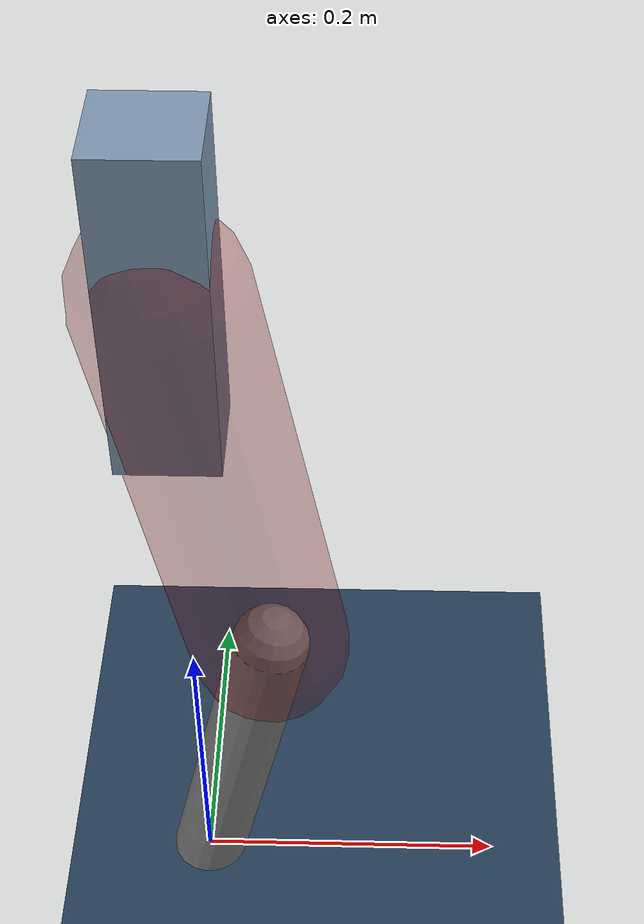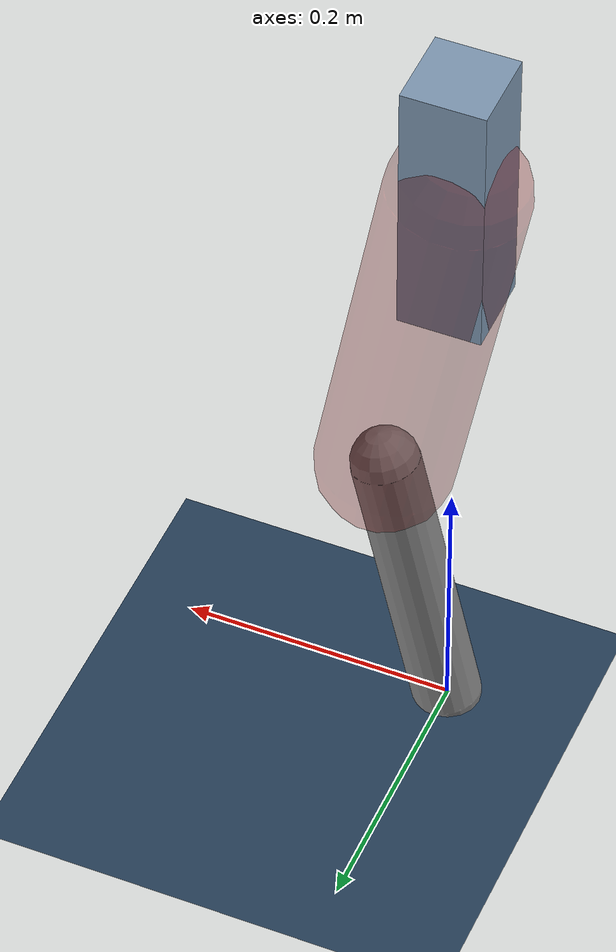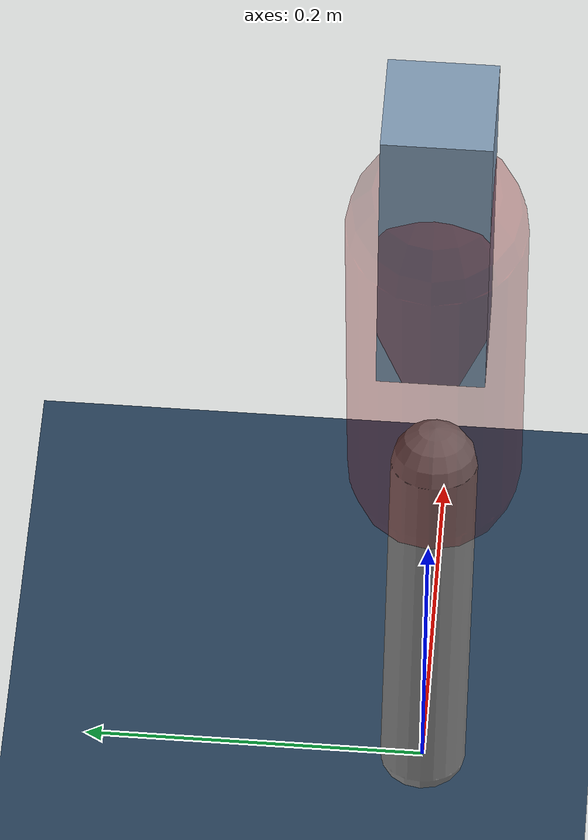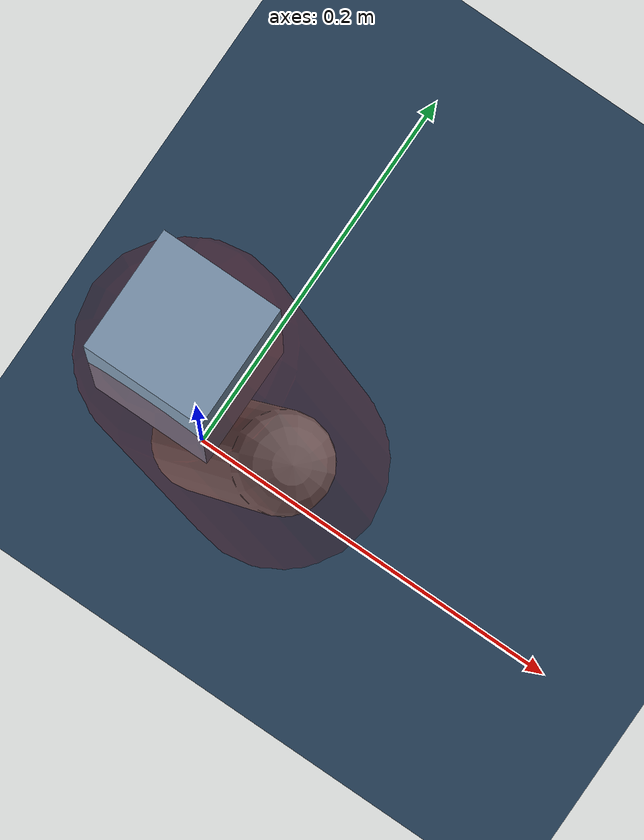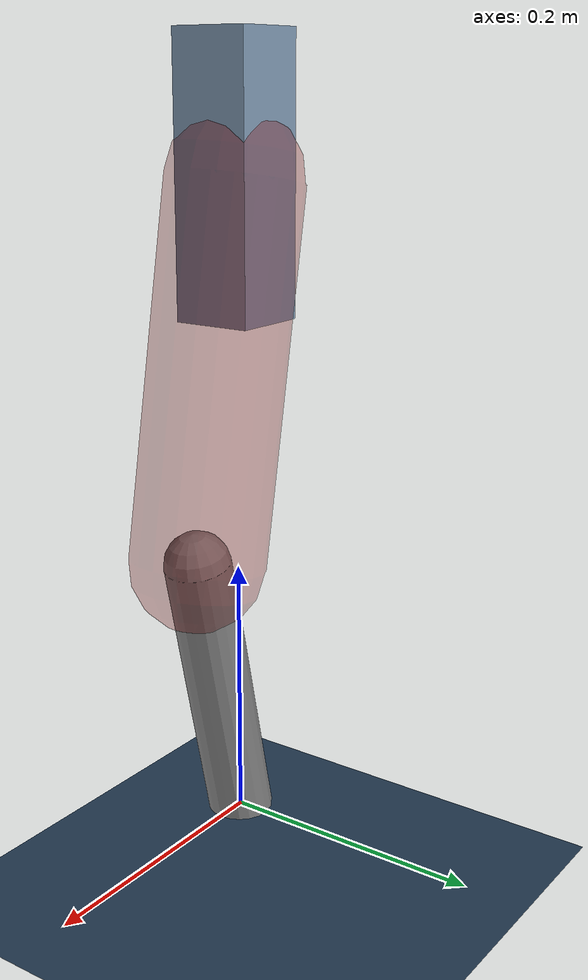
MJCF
<mujoco model="Hopper2D">
	<compiler inertiafromgeom="true" angle="radian" />
	<option timestep="0.001" integrator="implicit" cone="elliptic" solver="Newton" tolerance="1e-10" />

	<default>
		<geom contype="1" conaffinity="1" condim="3" friction="2 0.005 0.0001" solref="0.005 1" />
		<joint limited="true" damping="0.1" />
	</default>

	<asset>
		<texture name="skybox" type="skybox" builtin="gradient" rgb1=".4 .6 .8" rgb2="0 0 0" width="800" height="800" />
		<texture name="grid" type="2d" builtin="checker" rgb1=".1 .2 .3" rgb2=".2 .3 .4" width="300" height="300" mark="edge" markrgb=".2 .3 .4" />
		<material name="ground" texture="grid" texrepeat="1 1" texuniform="true" reflectance="0.1" />
		<material name="leg" rgba="0.5 0.6 0.7 1" />
	</asset>

	<worldbody>

		<geom name="floor" type="plane" size="5 5 0.25" material="ground" />

		<light directional="false" diffuse="0.8 0.8 0.8" specular="0.3 0.3 0.3" pos="0 0 2" dir="0 0 -1" />
		<light mode="targetbodycom" target="base" directional="false" diffuse="0.8 0.8 0.8" specular="0.3 0.3 0.3" pos="0 0 2" dir="0 0 -1" />

		<camera name="fixed" pos="0 -2 1" xyaxes="1 0 0 0 0 1" />
		<camera name="tracking" mode="trackcom" pos="0 -3 1" />

		<body name="root" pos="0 0 0.4881005069511232">
			<joint name="slide_x" type="slide" axis="1 0 0" range="-100 100" />
			<joint name="slide_z" type="slide" axis="0 0 1" range="0 10" />

			<body name="base" pos="0 0 0">
				<geom name="torso" type="box" size="0.03 0.03 0.1" mass="1.5979999999999999" material="leg" />

				<body name="link1" pos="0 0 0" euler="0 1.3907581256863901 0">
					<joint type="hinge" axis="0 -1 0" pos="0 0 0" name="hinge1" limited="true" range="-3.14 3.14" stiffness="0" damping="0.1" />
					<geom name="thigh" type="capsule" fromto="0 0 0 0.27564083182354837 0 0" size="0.05" rgba="0.5 0 0 0.3" mass="0.9235661627412257" />

					<body name="link2" pos="0.27564083182354837 0 0" euler="0 0.4037750876893535 0">
						<joint type="hinge" axis="0 -1 0" pos="0 0 0" name="hinge2" limited="true" range="-3.14 3.14" stiffness="0" damping="0.1" />
						<geom name="shank" type="capsule" fromto="0 0 0 0.22245967512757486 0 0" size="0.025" mass="0.4197137076148174" />

					</body>
				</body>
			</body>
		</body>
	</worldbody>

	<actuator>
		<motor name="torque1" joint="hinge1" ctrlrange="-42.885752308501516 42.885752308501516" ctrllimited="true" gear="1" />
		<motor name="torque2" joint="hinge2" ctrlrange="-33.498666883632104 33.498666883632104" ctrllimited="true" gear="1" />
	</actuator>
</mujoco>
